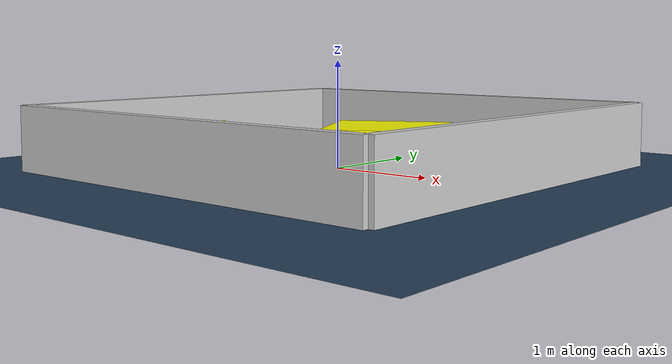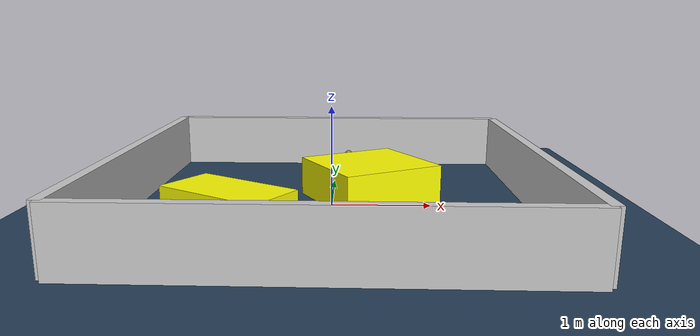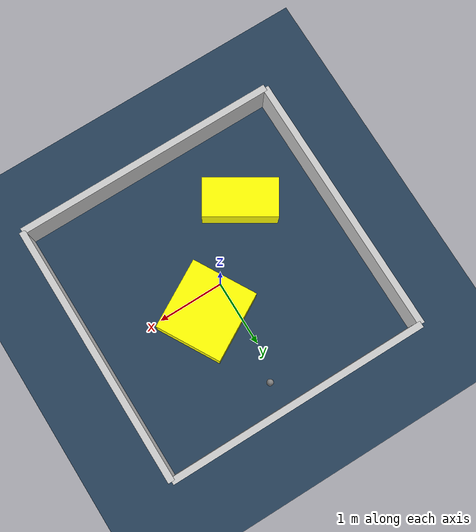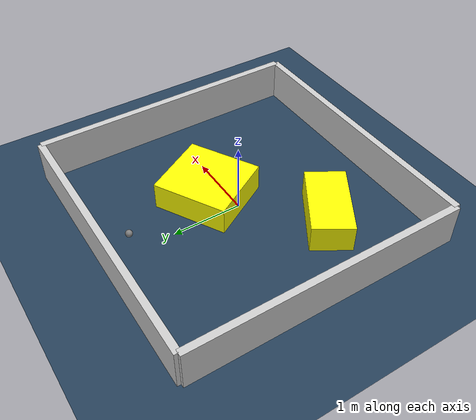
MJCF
<?xml version="1.0" ?>
<mujoco model="generated_environment">
  <option timestep="0.01" integrator="RK4" cone="elliptic"/>
  <default>
    <geom density="1"/>
  </default>
  <asset>
    <texture builtin="gradient" height="3072" rgb1="0.3 0.5 0.7" rgb2="0 0 0" type="skybox" width="512"/>
    <texture builtin="checker" height="300" mark="edge" markrgb="0.8 0.8 0.8" name="groundplane" rgb1="0.2 0.3 0.4" rgb2="0.1 0.2 0.3" type="2d" width="300"/>
    <material name="groundplane" reflectance="0.2" texrepeat="5 5" texture="groundplane" texuniform="true"/>
    <material name="robot" rgba="0.0 1.0 0.0 1"/>
  </asset>
  <worldbody>
    <light dir="0 0 -1" directional="true" pos="0 0 1.5"/>
    <geom condim="4" friction="1.0 0.005 0.001" material="groundplane" name="floor" size="0 0 0.05" type="plane"/>
    <body name="walls">
      <geom name="wall_1" condim="4" pos="-2.0 0.0 0.3" rgba="0.800000011920929 0.800000011920929 0.800000011920929 1.0" size="0.05 2.0 0.3" type="box"/>
      <geom name="wall_2" condim="4" pos="2.0 0.0 0.3" rgba="0.800000011920929 0.800000011920929 0.800000011920929 1.0" size="0.05 2.0 0.3" type="box"/>
      <geom name="wall_3" condim="4" pos="0.0 -2.0 0.3" rgba="0.800000011920929 0.800000011920929 0.800000011920929 1.0" size="2.0 0.05 0.3" type="box"/>
      <geom name="wall_4" condim="4" pos="0.0 2.0 0.3" rgba="0.800000011920929 0.800000011920929 0.800000011920929 1.0" size="2.0 0.05 0.3" type="box"/>
    </body>
    <body name="robot">
      <joint name="joint_x" type="slide" pos="0 0 0" axis="1 0 0"/>
      <joint name="joint_y" type="slide" pos="0 0 0" axis="0 1 0"/>
      <geom name="robot" type="sphere" pos="0.15619613759795192 1.5717240347702486 0.2" size="0.05" mass="5." friction="1.0 0.005 0.0001" condim="4"/>
      <site name="sensor_ball"/>
    </body>
    <body name="obstacle_1_movable">
      <geom name="obstacle_1_movable" condim="4" pos="0.386197980904311 0.25998792852145125 0.2" euler="0 0 29.578414761660223" friction="1.0 0.005 0.001" rgba="1 1 0 1" size="0.54037698192467 0.5061556957406558 0.2" type="box" mass="0.1"/>
      <joint type="free"/>
    </body>
    <body name="obstacle_2_movable">
      <geom name="obstacle_2_movable" condim="4" pos="-0.8762255128163654 -0.8657283601199611 0.2" euler="0 0 58.07573221770372" friction="1.0 0.005 0.001" rgba="1 1 0 1" size="0.2882815449709155 0.5503696882117288 0.2" type="box" mass="0.1"/>
      <joint type="free"/>
    </body>
  </worldbody>
  <actuator>
    <motor name="actuator_x" joint="joint_x" gear="1" ctrlrange="-1 1"/>
    <motor name="actuator_y" joint="joint_y" gear="1" ctrlrange="-1 1"/>
  </actuator>
</mujoco>
